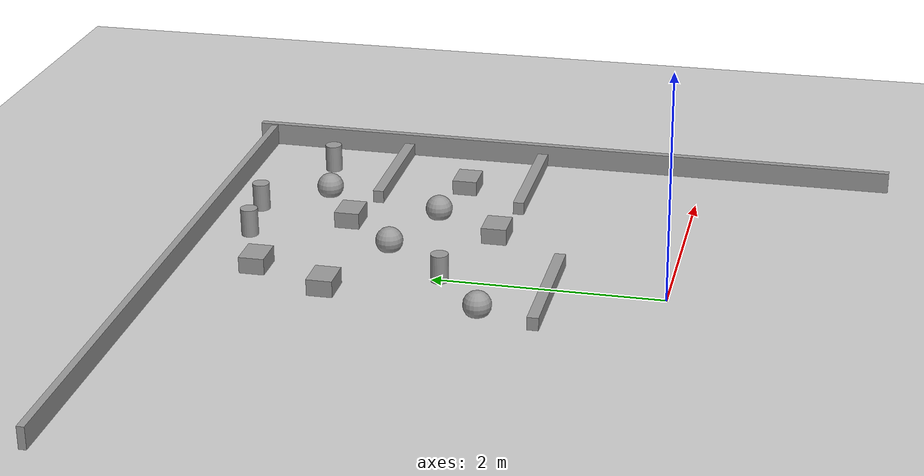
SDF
<sdf version="1.6">
 <world name="default">
  <model name="ground_plane">
   <static>1</static>
   <link name="link">
    <collision name="collision">
     <geometry><plane><normal>0 0 1</normal><size>100 100</size></plane></geometry>
     <surface>
      <contact><collide_bitmask>65535</collide_bitmask></contact>
      <friction><ode><mu>100</mu><mu2>50</mu2></ode></friction>
     </surface>
    </collision>
    <visual name="visual">
     <cast_shadows>0</cast_shadows>
     <geometry><plane><normal>0 0 1</normal><size>100 100</size></plane></geometry>
     <material>
      <script><uri>file://media/materials/scripts/gazebo.material</uri><name>Gazebo/Grey</name></script>
     </material>
    </visual>
   </link>
  </model>
  <model name="wall_clone">
   <link name="wall::link">
    <inertial>
     <mass>1</mass>
     <inertia>
      <ixx>0.166667</ixx>
      <ixy>0</ixy>
      <ixz>0</ixz>
      <iyy>0.166667</iyy>
      <iyz>0</iyz>
      <izz>0.166667</izz>
     </inertia>
    </inertial>
    <visual name="visual">
     <geometry><box><size>6.06185 0.064282 0.203764</size></box></geometry>
     <material>
      <script><name>Gazebo/Grey</name><uri>file://media/materials/scripts/gazebo.material</uri></script>
     </material>
    </visual>
    <collision name="collision">
     <geometry><box><size>6.06185 0.064282 0.203764</size></box></geometry>
     <surface>
      <friction>
       <ode><mu>1</mu><mu2>1</mu2><fdir1>0 0 0</fdir1><slip1>0</slip1><slip2>0</slip2></ode>
       <torsional>
        <coefficient>1</coefficient>
        <patch_radius>0</patch_radius>
        <surface_radius>0</surface_radius>
        <use_patch_radius>1</use_patch_radius>
        <ode><slip>0</slip></ode>
       </torsional>
      </friction>
      <bounce><restitution_coefficient>0</restitution_coefficient><threshold>1e+06</threshold></bounce>
      <contact>
       <collide_without_contact>0</collide_without_contact>
       <collide_without_contact_bitmask>1</collide_without_contact_bitmask>
       <collide_bitmask>1</collide_bitmask>
       <ode>
        <soft_cfm>0</soft_cfm>
        <soft_erp>0.2</soft_erp>
        <kp>1e+13</kp>
        <kd>1</kd>
        <max_vel>0.01</max_vel>
        <min_depth>0</min_depth>
       </ode>
       <bullet>
        <split_impulse>1</split_impulse>
        <split_impulse_penetration_threshold>-0.01</split_impulse_penetration_threshold>
        <soft_cfm>0</soft_cfm>
        <soft_erp>0.2</soft_erp>
        <kp>1e+13</kp>
        <kd>1</kd>
       </bullet>
      </contact>
     </surface>
    </collision>
   </link>
   <static>1</static>
   <pose>2.71395 1.32885 0.088334 -0.000616 -0.002779 1.56641</pose>
  </model>
  <model name="wall_clone_0">
   <link name="wall::link">
    <inertial>
     <mass>1</mass>
     <inertia>
      <ixx>0.166667</ixx>
      <ixy>0</ixy>
      <ixz>0</ixz>
      <iyy>0.166667</iyy>
      <iyz>0</iyz>
      <izz>0.166667</izz>
     </inertia>
    </inertial>
    <visual name="visual">
     <geometry><box><size>6.06185 0.064282 0.203764</size></box></geometry>
     <material>
      <script><name>Gazebo/Grey</name><uri>file://media/materials/scripts/gazebo.material</uri></script>
     </material>
    </visual>
    <collision name="collision">
     <geometry><box><size>6.06185 0.064282 0.203764</size></box></geometry>
     <surface>
      <friction>
       <ode><mu>1</mu><mu2>1</mu2><fdir1>0 0 0</fdir1><slip1>0</slip1><slip2>0</slip2></ode>
       <torsional>
        <coefficient>1</coefficient>
        <patch_radius>0</patch_radius>
        <surface_radius>0</surface_radius>
        <use_patch_radius>1</use_patch_radius>
        <ode><slip>0</slip></ode>
       </torsional>
      </friction>
      <bounce><restitution_coefficient>0</restitution_coefficient><threshold>1e+06</threshold></bounce>
      <contact>
       <collide_without_contact>0</collide_without_contact>
       <collide_without_contact_bitmask>1</collide_without_contact_bitmask>
       <collide_bitmask>1</collide_bitmask>
       <ode>
        <soft_cfm>0</soft_cfm>
        <soft_erp>0.2</soft_erp>
        <kp>1e+13</kp>
        <kd>1</kd>
        <max_vel>0.01</max_vel>
        <min_depth>0</min_depth>
       </ode>
       <bullet>
        <split_impulse>1</split_impulse>
        <split_impulse_penetration_threshold>-0.01</split_impulse_penetration_threshold>
        <soft_cfm>0</soft_cfm>
        <soft_erp>0.2</soft_erp>
        <kp>1e+13</kp>
        <kd>1</kd>
       </bullet>
      </contact>
     </surface>
    </collision>
   </link>
   <static>1</static>
   <pose>-0.270839 4.21948 0.083451 0.002776 -0.00063 0.000788</pose>
  </model>
  <model name="square_obstacle_clone_3">
   <link name="link">
    <inertial>
     <mass>1</mass>
     <inertia>
      <ixx>0.166667</ixx>
      <ixy>0</ixy>
      <ixz>0</ixz>
      <iyy>0.166667</iyy>
      <iyz>0</iyz>
      <izz>0.166667</izz>
     </inertia>
    </inertial>
    <visual name="visual">
     <geometry><box><size>0.287479 0.224054 0.165392</size></box></geometry>
     <material>
      <script><name>Gazebo/Grey</name><uri>file://media/materials/scripts/gazebo.material</uri></script>
     </material>
    </visual>
    <collision name="collision">
     <geometry><box><size>0.287479 0.224054 0.165392</size></box></geometry>
     <surface>
      <friction>
       <ode><mu>1</mu><mu2>1</mu2><fdir1>0 0 0</fdir1><slip1>0</slip1><slip2>0</slip2></ode>
       <torsional>
        <coefficient>1</coefficient>
        <patch_radius>0</patch_radius>
        <surface_radius>0</surface_radius>
        <use_patch_radius>1</use_patch_radius>
        <ode><slip>0</slip></ode>
       </torsional>
      </friction>
      <bounce><restitution_coefficient>0</restitution_coefficient><threshold>1e+06</threshold></bounce>
      <contact>
       <collide_without_contact>0</collide_without_contact>
       <collide_without_contact_bitmask>1</collide_without_contact_bitmask>
       <collide_bitmask>1</collide_bitmask>
       <ode>
        <soft_cfm>0</soft_cfm>
        <soft_erp>0.2</soft_erp>
        <kp>1e+13</kp>
        <kd>1</kd>
        <max_vel>0.01</max_vel>
        <min_depth>0</min_depth>
       </ode>
       <bullet>
        <split_impulse>1</split_impulse>
        <split_impulse_penetration_threshold>-0.01</split_impulse_penetration_threshold>
        <soft_cfm>0</soft_cfm>
        <soft_erp>0.2</soft_erp>
        <kp>1e+13</kp>
        <kd>1</kd>
       </bullet>
      </contact>
     </surface>
    </collision>
   </link>
   <static>1</static>
   <pose>1.97683 2.12663 0.043093 0 -0 0</pose>
  </model>
  <model name="square_obstacle_clone_4_clone">
   <link name="link">
    <inertial>
     <mass>1</mass>
     <inertia>
      <ixx>0.166667</ixx>
      <ixy>0</ixy>
      <ixz>0</ixz>
      <iyy>0.166667</iyy>
      <iyz>0</iyz>
      <izz>0.166667</izz>
     </inertia>
    </inertial>
    <visual name="visual">
     <geometry><box><size>0.287479 0.224054 0.165392</size></box></geometry>
     <material>
      <script><name>Gazebo/Grey</name><uri>file://media/materials/scripts/gazebo.material</uri></script>
     </material>
    </visual>
    <collision name="collision">
     <geometry><box><size>0.287479 0.224054 0.165392</size></box></geometry>
     <surface>
      <friction>
       <ode><mu>1</mu><mu2>1</mu2><fdir1>0 0 0</fdir1><slip1>0</slip1><slip2>0</slip2></ode>
       <torsional>
        <coefficient>1</coefficient>
        <patch_radius>0</patch_radius>
        <surface_radius>0</surface_radius>
        <use_patch_radius>1</use_patch_radius>
        <ode><slip>0</slip></ode>
       </torsional>
      </friction>
      <bounce><restitution_coefficient>0</restitution_coefficient><threshold>1e+06</threshold></bounce>
      <contact>
       <collide_without_contact>0</collide_without_contact>
       <collide_without_contact_bitmask>1</collide_without_contact_bitmask>
       <collide_bitmask>1</collide_bitmask>
       <ode>
        <soft_cfm>0</soft_cfm>
        <soft_erp>0.2</soft_erp>
        <kp>1e+13</kp>
        <kd>1</kd>
        <max_vel>0.01</max_vel>
        <min_depth>0</min_depth>
       </ode>
       <bullet>
        <split_impulse>1</split_impulse>
        <split_impulse_penetration_threshold>-0.01</split_impulse_penetration_threshold>
        <soft_cfm>0</soft_cfm>
        <soft_erp>0.2</soft_erp>
        <kp>1e+13</kp>
        <kd>1</kd>
       </bullet>
      </contact>
     </surface>
    </collision>
   </link>
   <static>1</static>
   <pose>0.9652 1.63657 0.055043 0 -0 0</pose>
  </model>
  <model name="square_obstacle_clone_4_clone_2">
   <link name="link">
    <inertial>
     <mass>1</mass>
     <inertia>
      <ixx>0.166667</ixx>
      <ixy>0</ixy>
      <ixz>0</ixz>
      <iyy>0.166667</iyy>
      <iyz>0</iyz>
      <izz>0.166667</izz>
     </inertia>
    </inertial>
    <visual name="visual">
     <geometry><box><size>0.287479 0.224054 0.165392</size></box></geometry>
     <material>
      <script><name>Gazebo/Grey</name><uri>file://media/materials/scripts/gazebo.material</uri></script>
     </material>
    </visual>
    <collision name="collision">
     <geometry><box><size>0.287479 0.224054 0.165392</size></box></geometry>
     <surface>
      <friction>
       <ode><mu>1</mu><mu2>1</mu2><fdir1>0 0 0</fdir1><slip1>0</slip1><slip2>0</slip2></ode>
       <torsional>
        <coefficient>1</coefficient>
        <patch_radius>0</patch_radius>
        <surface_radius>0</surface_radius>
        <use_patch_radius>1</use_patch_radius>
        <ode><slip>0</slip></ode>
       </torsional>
      </friction>
      <bounce><restitution_coefficient>0</restitution_coefficient><threshold>1e+06</threshold></bounce>
      <contact>
       <collide_without_contact>0</collide_without_contact>
       <collide_without_contact_bitmask>1</collide_without_contact_bitmask>
       <collide_bitmask>1</collide_bitmask>
       <ode>
        <soft_cfm>0</soft_cfm>
        <soft_erp>0.2</soft_erp>
        <kp>1e+13</kp>
        <kd>1</kd>
        <max_vel>0.01</max_vel>
        <min_depth>0</min_depth>
       </ode>
       <bullet>
        <split_impulse>1</split_impulse>
        <split_impulse_penetration_threshold>-0.01</split_impulse_penetration_threshold>
        <soft_cfm>0</soft_cfm>
        <soft_erp>0.2</soft_erp>
        <kp>1e+13</kp>
        <kd>1</kd>
       </bullet>
      </contact>
     </surface>
    </collision>
   </link>
   <static>1</static>
   <pose>-0.036173 3.52521 0.055043 0 -0 0</pose>
  </model>
  <model name="sphere_obstacles_clone_2_clone">
   <link name="sphere_obstacles_clone_2::link">
    <inertial>
     <mass>1</mass>
     <inertia><ixx>0.1</ixx><ixy>0</ixy><ixz>0</ixz><iyy>0.1</iyy><iyz>0</iyz><izz>0.1</izz></inertia>
    </inertial>
    <visual name="visual">
     <geometry><sphere><radius>0.121078</radius></sphere></geometry>
     <material>
      <script><name>Gazebo/Grey</name><uri>file://media/materials/scripts/gazebo.material</uri></script>
     </material>
    </visual>
    <collision name="collision">
     <geometry><sphere><radius>0.121078</radius></sphere></geometry>
     <surface>
      <friction>
       <ode><mu>1</mu><mu2>1</mu2><fdir1>0 0 0</fdir1><slip1>0</slip1><slip2>0</slip2></ode>
       <torsional>
        <coefficient>1</coefficient>
        <patch_radius>0</patch_radius>
        <surface_radius>0</surface_radius>
        <use_patch_radius>1</use_patch_radius>
        <ode><slip>0</slip></ode>
       </torsional>
      </friction>
      <bounce><restitution_coefficient>0</restitution_coefficient><threshold>1e+06</threshold></bounce>
      <contact>
       <collide_without_contact>0</collide_without_contact>
       <collide_without_contact_bitmask>1</collide_without_contact_bitmask>
       <collide_bitmask>1</collide_bitmask>
       <ode>
        <soft_cfm>0</soft_cfm>
        <soft_erp>0.2</soft_erp>
        <kp>1e+13</kp>
        <kd>1</kd>
        <max_vel>0.01</max_vel>
        <min_depth>0</min_depth>
       </ode>
       <bullet>
        <split_impulse>1</split_impulse>
        <split_impulse_penetration_threshold>-0.01</split_impulse_penetration_threshold>
        <soft_cfm>0</soft_cfm>
        <soft_erp>0.2</soft_erp>
        <kp>1e+13</kp>
        <kd>1</kd>
       </bullet>
      </contact>
     </surface>
    </collision>
   </link>
   <static>1</static>
   <pose>-0.518676 1.4857 0.0728 0 -0 0</pose>
  </model>
  <model name="sphere_obstacles_clone_2_clone_1">
   <link name="sphere_obstacles_clone_2::link">
    <inertial>
     <mass>1</mass>
     <inertia><ixx>0.1</ixx><ixy>0</ixy><ixz>0</ixz><iyy>0.1</iyy><iyz>0</iyz><izz>0.1</izz></inertia>
    </inertial>
    <visual name="visual">
     <geometry><sphere><radius>0.121078</radius></sphere></geometry>
     <material>
      <script><name>Gazebo/Grey</name><uri>file://media/materials/scripts/gazebo.material</uri></script>
     </material>
    </visual>
    <collision name="collision">
     <geometry><sphere><radius>0.121078</radius></sphere></geometry>
     <surface>
      <friction>
       <ode><mu>1</mu><mu2>1</mu2><fdir1>0 0 0</fdir1><slip1>0</slip1><slip2>0</slip2></ode>
       <torsional>
        <coefficient>1</coefficient>
        <patch_radius>0</patch_radius>
        <surface_radius>0</surface_radius>
        <use_patch_radius>1</use_patch_radius>
        <ode><slip>0</slip></ode>
       </torsional>
      </friction>
      <bounce><restitution_coefficient>0</restitution_coefficient><threshold>1e+06</threshold></bounce>
      <contact>
       <collide_without_contact>0</collide_without_contact>
       <collide_without_contact_bitmask>1</collide_without_contact_bitmask>
       <collide_bitmask>1</collide_bitmask>
       <ode>
        <soft_cfm>0</soft_cfm>
        <soft_erp>0.2</soft_erp>
        <kp>1e+13</kp>
        <kd>1</kd>
        <max_vel>0.01</max_vel>
        <min_depth>0</min_depth>
       </ode>
       <bullet>
        <split_impulse>1</split_impulse>
        <split_impulse_penetration_threshold>-0.01</split_impulse_penetration_threshold>
        <soft_cfm>0</soft_cfm>
        <soft_erp>0.2</soft_erp>
        <kp>1e+13</kp>
        <kd>1</kd>
       </bullet>
      </contact>
     </surface>
    </collision>
   </link>
   <static>1</static>
   <pose>1.60832 3.34503 0.0728 0 -0 0</pose>
  </model>
  <model name="sphere_obstacles_clone_2_clone_2">
   <link name="sphere_obstacles_clone_2::link">
    <inertial>
     <mass>1</mass>
     <inertia><ixx>0.1</ixx><ixy>0</ixy><ixz>0</ixz><iyy>0.1</iyy><iyz>0</iyz><izz>0.1</izz></inertia>
    </inertial>
    <visual name="visual">
     <geometry><sphere><radius>0.121078</radius></sphere></geometry>
     <material>
      <script><name>Gazebo/Grey</name><uri>file://media/materials/scripts/gazebo.material</uri></script>
     </material>
    </visual>
    <collision name="collision">
     <geometry><sphere><radius>0.121078</radius></sphere></geometry>
     <surface>
      <friction>
       <ode><mu>1</mu><mu2>1</mu2><fdir1>0 0 0</fdir1><slip1>0</slip1><slip2>0</slip2></ode>
       <torsional>
        <coefficient>1</coefficient>
        <patch_radius>0</patch_radius>
        <surface_radius>0</surface_radius>
        <use_patch_radius>1</use_patch_radius>
        <ode><slip>0</slip></ode>
       </torsional>
      </friction>
      <bounce><restitution_coefficient>0</restitution_coefficient><threshold>1e+06</threshold></bounce>
      <contact>
       <collide_without_contact>0</collide_without_contact>
       <collide_without_contact_bitmask>1</collide_without_contact_bitmask>
       <collide_bitmask>1</collide_bitmask>
       <ode>
        <soft_cfm>0</soft_cfm>
        <soft_erp>0.2</soft_erp>
        <kp>1e+13</kp>
        <kd>1</kd>
        <max_vel>0.01</max_vel>
        <min_depth>0</min_depth>
       </ode>
       <bullet>
        <split_impulse>1</split_impulse>
        <split_impulse_penetration_threshold>-0.01</split_impulse_penetration_threshold>
        <soft_cfm>0</soft_cfm>
        <soft_erp>0.2</soft_erp>
        <kp>1e+13</kp>
        <kd>1</kd>
       </bullet>
      </contact>
     </surface>
    </collision>
   </link>
   <static>1</static>
   <pose>0.551876 2.50628 0.0728 0 -0 0</pose>
  </model>
  <model name="square_obstacle_clone_4_clone_clone">
   <link name="link">
    <inertial>
     <mass>1</mass>
     <inertia>
      <ixx>0.166667</ixx>
      <ixy>0</ixy>
      <ixz>0</ixz>
      <iyy>0.166667</iyy>
      <iyz>0</iyz>
      <izz>0.166667</izz>
     </inertia>
    </inertial>
    <visual name="visual">
     <geometry><box><size>0.287479 0.224054 0.165392</size></box></geometry>
     <material>
      <script><name>Gazebo/Grey</name><uri>file://media/materials/scripts/gazebo.material</uri></script>
     </material>
    </visual>
    <collision name="collision">
     <geometry><box><size>0.287479 0.224054 0.165392</size></box></geometry>
     <surface>
      <friction>
       <ode><mu>1</mu><mu2>1</mu2><fdir1>0 0 0</fdir1><slip1>0</slip1><slip2>0</slip2></ode>
       <torsional>
        <coefficient>1</coefficient>
        <patch_radius>0</patch_radius>
        <surface_radius>0</surface_radius>
        <use_patch_radius>1</use_patch_radius>
        <ode><slip>0</slip></ode>
       </torsional>
      </friction>
      <bounce><restitution_coefficient>0</restitution_coefficient><threshold>1e+06</threshold></bounce>
      <contact>
       <collide_without_contact>0</collide_without_contact>
       <collide_without_contact_bitmask>1</collide_without_contact_bitmask>
       <collide_bitmask>1</collide_bitmask>
       <ode>
        <soft_cfm>0</soft_cfm>
        <soft_erp>0.2</soft_erp>
        <kp>1e+13</kp>
        <kd>1</kd>
        <max_vel>0.01</max_vel>
        <min_depth>0</min_depth>
       </ode>
       <bullet>
        <split_impulse>1</split_impulse>
        <split_impulse_penetration_threshold>-0.01</split_impulse_penetration_threshold>
        <soft_cfm>0</soft_cfm>
        <soft_erp>0.2</soft_erp>
        <kp>1e+13</kp>
        <kd>1</kd>
       </bullet>
      </contact>
     </surface>
    </collision>
   </link>
   <static>1</static>
   <pose>1.03503 2.98935 0.055043 0 -0 0</pose>
  </model>
  <model name="cylinder_obstacles">
   <link name="link">
    <inertial>
     <mass>1</mass>
     <inertia><ixx>0.145833</ixx><ixy>0</ixy><ixz>0</ixz><iyy>0.145833</iyy><iyz>0</iyz><izz>0.125</izz></inertia>
    </inertial>
    <visual name="visual">
     <geometry><cylinder><radius>0.076548</radius><length>0.26008</length></cylinder></geometry>
     <material>
      <script><name>Gazebo/Grey</name><uri>file://media/materials/scripts/gazebo.material</uri></script>
     </material>
    </visual>
    <collision name="collision">
     <geometry><cylinder><radius>0.076548</radius><length>0.26008</length></cylinder></geometry>
     <surface>
      <friction>
       <ode><mu>1</mu><mu2>1</mu2><fdir1>0 0 0</fdir1><slip1>0</slip1><slip2>0</slip2></ode>
       <torsional>
        <coefficient>1</coefficient>
        <patch_radius>0</patch_radius>
        <surface_radius>0</surface_radius>
        <use_patch_radius>1</use_patch_radius>
        <ode><slip>0</slip></ode>
       </torsional>
      </friction>
      <bounce><restitution_coefficient>0</restitution_coefficient><threshold>1e+06</threshold></bounce>
      <contact>
       <collide_without_contact>0</collide_without_contact>
       <collide_without_contact_bitmask>1</collide_without_contact_bitmask>
       <collide_bitmask>1</collide_bitmask>
       <ode>
        <soft_cfm>0</soft_cfm>
        <soft_erp>0.2</soft_erp>
        <kp>1e+13</kp>
        <kd>1</kd>
        <max_vel>0.01</max_vel>
        <min_depth>0</min_depth>
       </ode>
       <bullet>
        <split_impulse>1</split_impulse>
        <split_impulse_penetration_threshold>-0.01</split_impulse_penetration_threshold>
        <soft_cfm>0</soft_cfm>
        <soft_erp>0.2</soft_erp>
        <kp>1e+13</kp>
        <kd>1</kd>
       </bullet>
      </contact>
     </surface>
    </collision>
   </link>
   <static>1</static>
   <pose>0.021644 1.92958 0.110032 0 -0 0</pose>
  </model>
  <model name="cylinder_obstacles_clone_7">
   <link name="link">
    <inertial>
     <mass>1</mass>
     <inertia><ixx>0.145833</ixx><ixy>0</ixy><ixz>0</ixz><iyy>0.145833</iyy><iyz>0</iyz><izz>0.125</izz></inertia>
    </inertial>
    <visual name="visual">
     <geometry><cylinder><radius>0.076548</radius><length>0.26008</length></cylinder></geometry>
     <material>
      <script><name>Gazebo/Grey</name><uri>file://media/materials/scripts/gazebo.material</uri></script>
     </material>
    </visual>
    <collision name="collision">
     <geometry><cylinder><radius>0.076548</radius><length>0.26008</length></cylinder></geometry>
     <surface>
      <friction>
       <ode><mu>1</mu><mu2>1</mu2><fdir1>0 0 0</fdir1><slip1>0</slip1><slip2>0</slip2></ode>
       <torsional>
        <coefficient>1</coefficient>
        <patch_radius>0</patch_radius>
        <surface_radius>0</surface_radius>
        <use_patch_radius>1</use_patch_radius>
        <ode><slip>0</slip></ode>
       </torsional>
      </friction>
      <bounce><restitution_coefficient>0</restitution_coefficient><threshold>1e+06</threshold></bounce>
      <contact>
       <collide_without_contact>0</collide_without_contact>
       <collide_without_contact_bitmask>1</collide_without_contact_bitmask>
       <collide_bitmask>1</collide_bitmask>
       <ode>
        <soft_cfm>0</soft_cfm>
        <soft_erp>0.2</soft_erp>
        <kp>1e+13</kp>
        <kd>1</kd>
        <max_vel>0.01</max_vel>
        <min_depth>0</min_depth>
       </ode>
       <bullet>
        <split_impulse>1</split_impulse>
        <split_impulse_penetration_threshold>-0.01</split_impulse_penetration_threshold>
        <soft_cfm>0</soft_cfm>
        <soft_erp>0.2</soft_erp>
        <kp>1e+13</kp>
        <kd>1</kd>
       </bullet>
      </contact>
     </surface>
    </collision>
   </link>
   <static>1</static>
   <pose>2.19042 3.47931 0.110032 0 -0 0</pose>
  </model>
  <model name="cylinder_obstacles_clone_8">
   <link name="link">
    <inertial>
     <mass>1</mass>
     <inertia><ixx>0.145833</ixx><ixy>0</ixy><ixz>0</ixz><iyy>0.145833</iyy><iyz>0</iyz><izz>0.125</izz></inertia>
    </inertial>
    <visual name="visual">
     <geometry><cylinder><radius>0.076548</radius><length>0.26008</length></cylinder></geometry>
     <material>
      <script><name>Gazebo/Grey</name><uri>file://media/materials/scripts/gazebo.material</uri></script>
     </material>
    </visual>
    <collision name="collision">
     <geometry><cylinder><radius>0.076548</radius><length>0.26008</length></cylinder></geometry>
     <surface>
      <friction>
       <ode><mu>1</mu><mu2>1</mu2><fdir1>0 0 0</fdir1><slip1>0</slip1><slip2>0</slip2></ode>
       <torsional>
        <coefficient>1</coefficient>
        <patch_radius>0</patch_radius>
        <surface_radius>0</surface_radius>
        <use_patch_radius>1</use_patch_radius>
        <ode><slip>0</slip></ode>
       </torsional>
      </friction>
      <bounce><restitution_coefficient>0</restitution_coefficient><threshold>1e+06</threshold></bounce>
      <contact>
       <collide_without_contact>0</collide_without_contact>
       <collide_without_contact_bitmask>1</collide_without_contact_bitmask>
       <collide_bitmask>1</collide_bitmask>
       <ode>
        <soft_cfm>0</soft_cfm>
        <soft_erp>0.2</soft_erp>
        <kp>1e+13</kp>
        <kd>1</kd>
        <max_vel>0.01</max_vel>
        <min_depth>0</min_depth>
       </ode>
       <bullet>
        <split_impulse>1</split_impulse>
        <split_impulse_penetration_threshold>-0.01</split_impulse_penetration_threshold>
        <soft_cfm>0</soft_cfm>
        <soft_erp>0.2</soft_erp>
        <kp>1e+13</kp>
        <kd>1</kd>
       </bullet>
      </contact>
     </surface>
    </collision>
   </link>
   <static>1</static>
   <pose>0.606505 3.79547 0.110032 0 -0 0</pose>
  </model>
  <model name="long_obstacle">
   <link name="link">
    <inertial>
     <mass>1</mass>
     <inertia>
      <ixx>0.166667</ixx>
      <ixy>0</ixy>
      <ixz>0</ixz>
      <iyy>0.166667</iyy>
      <iyz>0</iyz>
      <izz>0.166667</izz>
     </inertia>
    </inertial>
    <visual name="visual">
     <geometry><box><size>1.23514 0.097707 0.121659</size></box></geometry>
     <material>
      <script><name>Gazebo/Grey</name><uri>file://media/materials/scripts/gazebo.material</uri></script>
     </material>
    </visual>
    <collision name="collision">
     <geometry><box><size>1.23514 0.097707 0.121659</size></box></geometry>
     <surface>
      <friction>
       <ode><mu>1</mu><mu2>1</mu2><fdir1>0 0 0</fdir1><slip1>0</slip1><slip2>0</slip2></ode>
       <torsional>
        <coefficient>1</coefficient>
        <patch_radius>0</patch_radius>
        <surface_radius>0</surface_radius>
        <use_patch_radius>1</use_patch_radius>
        <ode><slip>0</slip></ode>
       </torsional>
      </friction>
      <bounce><restitution_coefficient>0</restitution_coefficient><threshold>1e+06</threshold></bounce>
      <contact>
       <collide_without_contact>0</collide_without_contact>
       <collide_without_contact_bitmask>1</collide_without_contact_bitmask>
       <collide_bitmask>1</collide_bitmask>
       <ode>
        <soft_cfm>0</soft_cfm>
        <soft_erp>0.2</soft_erp>
        <kp>1e+13</kp>
        <kd>1</kd>
        <max_vel>0.01</max_vel>
        <min_depth>0</min_depth>
       </ode>
       <bullet>
        <split_impulse>1</split_impulse>
        <split_impulse_penetration_threshold>-0.01</split_impulse_penetration_threshold>
        <soft_cfm>0</soft_cfm>
        <soft_erp>0.2</soft_erp>
        <kp>1e+13</kp>
        <kd>1</kd>
       </bullet>
      </contact>
     </surface>
    </collision>
   </link>
   <static>1</static>
   <pose>-0.105113 0.985942 0.044707 0 -0 0</pose>
  </model>
  <model name="long_obstacle_clone_1">
   <link name="link">
    <inertial>
     <mass>1</mass>
     <inertia>
      <ixx>0.166667</ixx>
      <ixy>0</ixy>
      <ixz>0</ixz>
      <iyy>0.166667</iyy>
      <iyz>0</iyz>
      <izz>0.166667</izz>
     </inertia>
    </inertial>
    <visual name="visual">
     <geometry><box><size>1.23514 0.097707 0.121659</size></box></geometry>
     <material>
      <script><name>Gazebo/Grey</name><uri>file://media/materials/scripts/gazebo.material</uri></script>
     </material>
    </visual>
    <collision name="collision">
     <geometry><box><size>1.23514 0.097707 0.121659</size></box></geometry>
     <surface>
      <friction>
       <ode><mu>1</mu><mu2>1</mu2><fdir1>0 0 0</fdir1><slip1>0</slip1><slip2>0</slip2></ode>
       <torsional>
        <coefficient>1</coefficient>
        <patch_radius>0</patch_radius>
        <surface_radius>0</surface_radius>
        <use_patch_radius>1</use_patch_radius>
        <ode><slip>0</slip></ode>
       </torsional>
      </friction>
      <bounce><restitution_coefficient>0</restitution_coefficient><threshold>1e+06</threshold></bounce>
      <contact>
       <collide_without_contact>0</collide_without_contact>
       <collide_without_contact_bitmask>1</collide_without_contact_bitmask>
       <collide_bitmask>1</collide_bitmask>
       <ode>
        <soft_cfm>0</soft_cfm>
        <soft_erp>0.2</soft_erp>
        <kp>1e+13</kp>
        <kd>1</kd>
        <max_vel>0.01</max_vel>
        <min_depth>0</min_depth>
       </ode>
       <bullet>
        <split_impulse>1</split_impulse>
        <split_impulse_penetration_threshold>-0.01</split_impulse_penetration_threshold>
        <soft_cfm>0</soft_cfm>
        <soft_erp>0.2</soft_erp>
        <kp>1e+13</kp>
        <kd>1</kd>
       </bullet>
      </contact>
     </surface>
    </collision>
   </link>
   <static>1</static>
   <pose>2.11872 1.55231 0.044707 0 -0 0</pose>
  </model>
  <model name="long_obstacle_clone_3">
   <link name="link">
    <inertial>
     <mass>1</mass>
     <inertia>
      <ixx>0.166667</ixx>
      <ixy>0</ixy>
      <ixz>0</ixz>
      <iyy>0.166667</iyy>
      <iyz>0</iyz>
      <izz>0.166667</izz>
     </inertia>
    </inertial>
    <visual name="visual">
     <geometry><box><size>1.23514 0.097707 0.121659</size></box></geometry>
     <material>
      <script><name>Gazebo/Grey</name><uri>file://media/materials/scripts/gazebo.material</uri></script>
     </material>
    </visual>
    <collision name="collision">
     <geometry><box><size>1.23514 0.097707 0.121659</size></box></geometry>
     <surface>
      <friction>
       <ode><mu>1</mu><mu2>1</mu2><fdir1>0 0 0</fdir1><slip1>0</slip1><slip2>0</slip2></ode>
       <torsional>
        <coefficient>1</coefficient>
        <patch_radius>0</patch_radius>
        <surface_radius>0</surface_radius>
        <use_patch_radius>1</use_patch_radius>
        <ode><slip>0</slip></ode>
       </torsional>
      </friction>
      <bounce><restitution_coefficient>0</restitution_coefficient><threshold>1e+06</threshold></bounce>
      <contact>
       <collide_without_contact>0</collide_without_contact>
       <collide_without_contact_bitmask>1</collide_without_contact_bitmask>
       <collide_bitmask>1</collide_bitmask>
       <ode>
        <soft_cfm>0</soft_cfm>
        <soft_erp>0.2</soft_erp>
        <kp>1e+13</kp>
        <kd>1</kd>
        <max_vel>0.01</max_vel>
        <min_depth>0</min_depth>
       </ode>
       <bullet>
        <split_impulse>1</split_impulse>
        <split_impulse_penetration_threshold>-0.01</split_impulse_penetration_threshold>
        <soft_cfm>0</soft_cfm>
        <soft_erp>0.2</soft_erp>
        <kp>1e+13</kp>
        <kd>1</kd>
       </bullet>
      </contact>
     </surface>
    </collision>
   </link>
   <static>1</static>
   <pose>2.12396 2.8614 0.044707 0 -0 0</pose>
  </model>
  <model name="square_obstacle_clone_4_clone_1_clone_0">
   <link name="link">
    <inertial>
     <mass>1</mass>
     <inertia>
      <ixx>0.166667</ixx>
      <ixy>0</ixy>
      <ixz>0</ixz>
      <iyy>0.166667</iyy>
      <iyz>0</iyz>
      <izz>0.166667</izz>
     </inertia>
    </inertial>
    <visual name="visual">
     <geometry><box><size>0.287479 0.224054 0.165392</size></box></geometry>
     <material>
      <script><name>Gazebo/Grey</name><uri>file://media/materials/scripts/gazebo.material</uri></script>
     </material>
    </visual>
    <collision name="collision">
     <geometry><box><size>0.287479 0.224054 0.165392</size></box></geometry>
     <surface>
      <friction>
       <ode><mu>1</mu><mu2>1</mu2><fdir1>0 0 0</fdir1><slip1>0</slip1><slip2>0</slip2></ode>
       <torsional>
        <coefficient>1</coefficient>
        <patch_radius>0</patch_radius>
        <surface_radius>0</surface_radius>
        <use_patch_radius>1</use_patch_radius>
        <ode><slip>0</slip></ode>
       </torsional>
      </friction>
      <bounce><restitution_coefficient>0</restitution_coefficient><threshold>1e+06</threshold></bounce>
      <contact>
       <collide_without_contact>0</collide_without_contact>
       <collide_without_contact_bitmask>1</collide_without_contact_bitmask>
       <collide_bitmask>1</collide_bitmask>
       <ode>
        <soft_cfm>0</soft_cfm>
        <soft_erp>0.2</soft_erp>
        <kp>1e+13</kp>
        <kd>1</kd>
        <max_vel>0.01</max_vel>
        <min_depth>0</min_depth>
       </ode>
       <bullet>
        <split_impulse>1</split_impulse>
        <split_impulse_penetration_threshold>-0.01</split_impulse_penetration_threshold>
        <soft_cfm>0</soft_cfm>
        <soft_erp>0.2</soft_erp>
        <kp>1e+13</kp>
        <kd>1</kd>
       </bullet>
      </contact>
     </surface>
    </collision>
   </link>
   <static>1</static>
   <pose>-0.336055 2.83843 0.055043 0 -0 0</pose>
  </model>
  <model name="sphere_obstacles_clone_2_clone_3_clone">
   <link name="sphere_obstacles_clone_2::link">
    <inertial>
     <mass>1</mass>
     <inertia><ixx>0.1</ixx><ixy>0</ixy><ixz>0</ixz><iyy>0.1</iyy><iyz>0</iyz><izz>0.1</izz></inertia>
    </inertial>
    <visual name="visual">
     <geometry><sphere><radius>0.121078</radius></sphere></geometry>
     <material>
      <script><name>Gazebo/Grey</name><uri>file://media/materials/scripts/gazebo.material</uri></script>
     </material>
    </visual>
    <collision name="collision">
     <geometry><sphere><radius>0.121078</radius></sphere></geometry>
     <surface>
      <friction>
       <ode><mu>1</mu><mu2>1</mu2><fdir1>0 0 0</fdir1><slip1>0</slip1><slip2>0</slip2></ode>
       <torsional>
        <coefficient>1</coefficient>
        <patch_radius>0</patch_radius>
        <surface_radius>0</surface_radius>
        <use_patch_radius>1</use_patch_radius>
        <ode><slip>0</slip></ode>
       </torsional>
      </friction>
      <bounce><restitution_coefficient>0</restitution_coefficient><threshold>1e+06</threshold></bounce>
      <contact>
       <collide_without_contact>0</collide_without_contact>
       <collide_without_contact_bitmask>1</collide_without_contact_bitmask>
       <collide_bitmask>1</collide_bitmask>
       <ode>
        <soft_cfm>0</soft_cfm>
        <soft_erp>0.2</soft_erp>
        <kp>1e+13</kp>
        <kd>1</kd>
        <max_vel>0.01</max_vel>
        <min_depth>0</min_depth>
       </ode>
       <bullet>
        <split_impulse>1</split_impulse>
        <split_impulse_penetration_threshold>-0.01</split_impulse_penetration_threshold>
        <soft_cfm>0</soft_cfm>
        <soft_erp>0.2</soft_erp>
        <kp>1e+13</kp>
        <kd>1</kd>
       </bullet>
      </contact>
     </surface>
    </collision>
   </link>
   <static>1</static>
   <pose>1.31128 2.24167 0.0728 0 -0 0</pose>
  </model>
  <model name="cylinder_obstacles_clone_3_clone_3">
   <link name="link">
    <inertial>
     <mass>1</mass>
     <inertia><ixx>0.145833</ixx><ixy>0</ixy><ixz>0</ixz><iyy>0.145833</iyy><iyz>0</iyz><izz>0.125</izz></inertia>
    </inertial>
    <visual name="visual">
     <geometry><cylinder><radius>0.076548</radius><length>0.26008</length></cylinder></geometry>
     <material>
      <script><name>Gazebo/Grey</name><uri>file://media/materials/scripts/gazebo.material</uri></script>
     </material>
    </visual>
    <collision name="collision">
     <geometry><cylinder><radius>0.076548</radius><length>0.26008</length></cylinder></geometry>
     <surface>
      <friction>
       <ode><mu>1</mu><mu2>1</mu2><fdir1>0 0 0</fdir1><slip1>0</slip1><slip2>0</slip2></ode>
       <torsional>
        <coefficient>1</coefficient>
        <patch_radius>0</patch_radius>
        <surface_radius>0</surface_radius>
        <use_patch_radius>1</use_patch_radius>
        <ode><slip>0</slip></ode>
       </torsional>
      </friction>
      <bounce><restitution_coefficient>0</restitution_coefficient><threshold>1e+06</threshold></bounce>
      <contact>
       <collide_without_contact>0</collide_without_contact>
       <collide_without_contact_bitmask>1</collide_without_contact_bitmask>
       <collide_bitmask>1</collide_bitmask>
       <ode>
        <soft_cfm>0</soft_cfm>
        <soft_erp>0.2</soft_erp>
        <kp>1e+13</kp>
        <kd>1</kd>
        <max_vel>0.01</max_vel>
        <min_depth>0</min_depth>
       </ode>
       <bullet>
        <split_impulse>1</split_impulse>
        <split_impulse_penetration_threshold>-0.01</split_impulse_penetration_threshold>
        <soft_cfm>0</soft_cfm>
        <soft_erp>0.2</soft_erp>
        <kp>1e+13</kp>
        <kd>1</kd>
       </bullet>
      </contact>
     </surface>
    </collision>
   </link>
   <static>1</static>
   <pose>1.16974 3.86822 0.110032 0 -0 0</pose>
  </model>
 </world>
</sdf>
